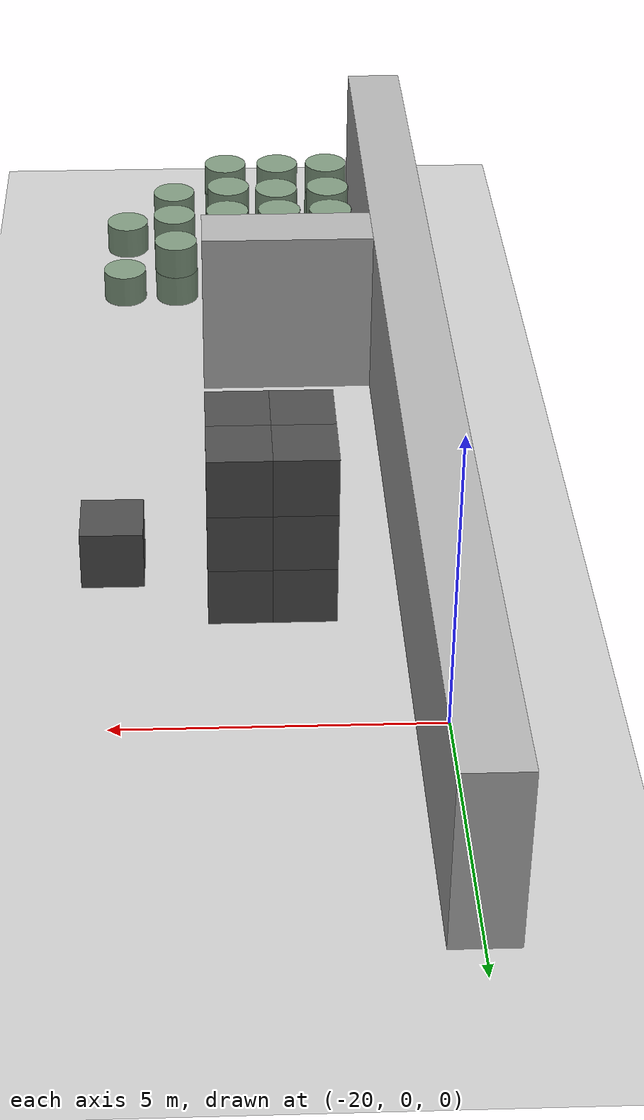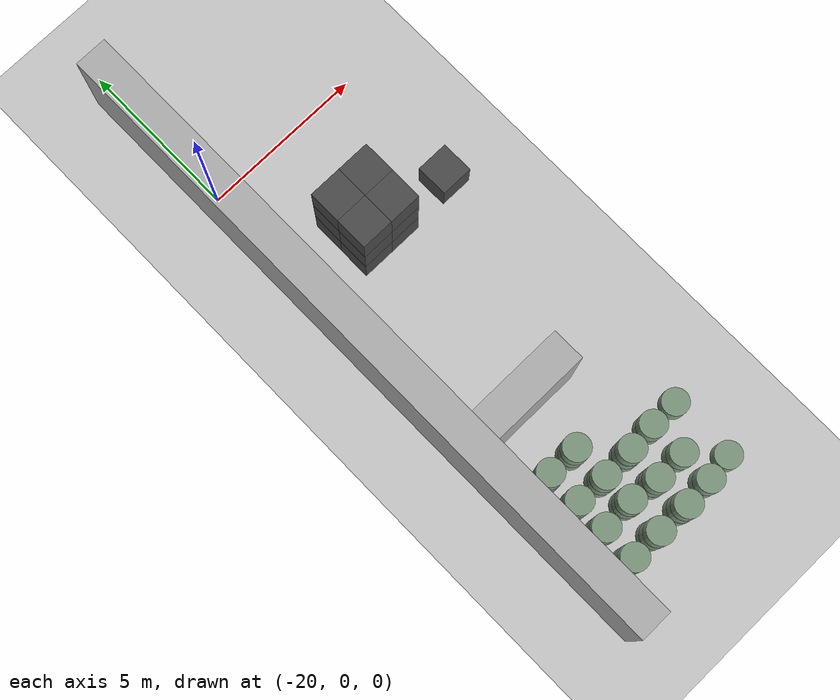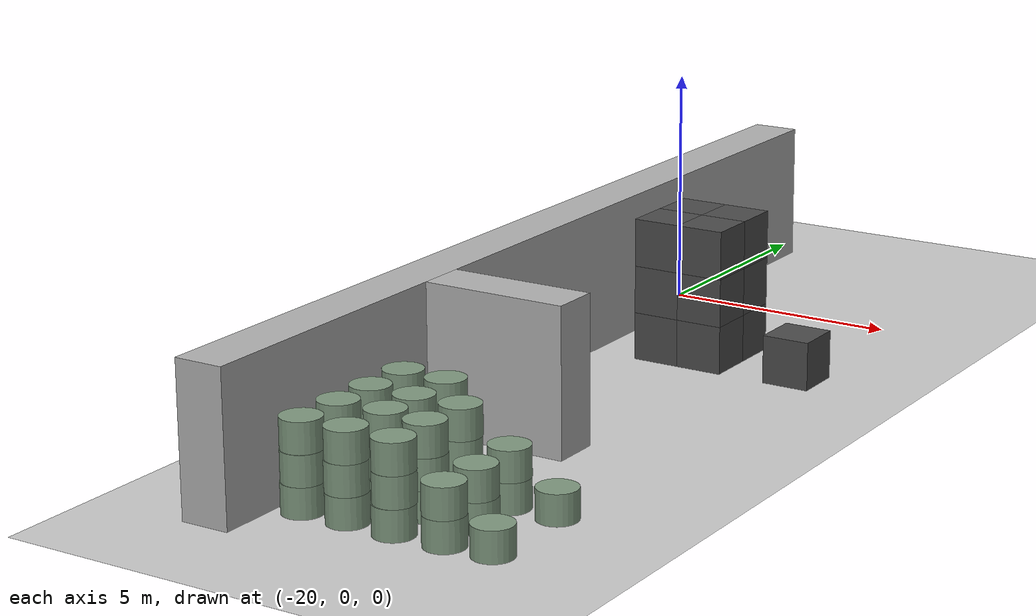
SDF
<sdf version="1.6">
 <world name="default">
  <include><uri>model://ground_plane</uri></include>
  <model name="wall_0">
   <pose>-20.0 -6.0 1.5 0 -0 0</pose>
   <static>True</static>
   <link name="link">
    <inertial>
     <mass>100</mass>
     <inertia>
      <ixx>0.166667</ixx>
      <ixy>0</ixy>
      <ixz>0</ixz>
      <iyy>0.166667</iyy>
      <iyz>0</iyz>
      <izz>0.166667</izz>
     </inertia>
    </inertial>
    <collision name="collision"><geometry><box><size>1.0 21.0 3.0</size></box></geometry></collision>
    <visual name="visual">
     <geometry><box><size>1.0 21.0 3.0</size></box></geometry>
     <material><ambient>0.7 0.7 0.7 1</ambient><diffuse>0.7 0.7 0.7 1</diffuse></material>
    </visual>
   </link>
  </model>
  <model name="wall_7">
   <pose>-18.0 -10.0 1.5 0 -0 0</pose>
   <static>True</static>
   <link name="link">
    <inertial>
     <mass>100</mass>
     <inertia>
      <ixx>0.166667</ixx>
      <ixy>0</ixy>
      <ixz>0</ixz>
      <iyy>0.166667</iyy>
      <iyz>0</iyz>
      <izz>0.166667</izz>
     </inertia>
    </inertial>
    <collision name="collision"><geometry><box><size>3.0 1.0 3.0</size></box></geometry></collision>
    <visual name="visual">
     <geometry><box><size>3.0 1.0 3.0</size></box></geometry>
     <material><ambient>0.7 0.7 0.7 1</ambient><diffuse>0.7 0.7 0.7 1</diffuse></material>
    </visual>
   </link>
  </model>
  <model name="unit_box_0">
   <pose>-18.0 -4.0 0.5 0 -0 0</pose>
   <static>True</static>
   <link name="link">
    <inertial>
     <mass>100</mass>
     <inertia>
      <ixx>0.166667</ixx>
      <ixy>0</ixy>
      <ixz>0</ixz>
      <iyy>0.166667</iyy>
      <iyz>0</iyz>
      <izz>0.166667</izz>
     </inertia>
    </inertial>
    <collision name="collision"><geometry><box><size>1.0 1.0 1.0</size></box></geometry></collision>
    <visual name="visual">
     <geometry><box><size>1.0 1.0 1.0</size></box></geometry>
     <material><ambient>0.3 0.3 0.3 1</ambient><diffuse>0.3 0.3 0.3 1</diffuse></material>
    </visual>
   </link>
  </model>
  <model name="unit_box_1">
   <pose>-18.0 -4.0 1.5 0 -0 0</pose>
   <static>True</static>
   <link name="link">
    <inertial>
     <mass>100</mass>
     <inertia>
      <ixx>0.166667</ixx>
      <ixy>0</ixy>
      <ixz>0</ixz>
      <iyy>0.166667</iyy>
      <iyz>0</iyz>
      <izz>0.166667</izz>
     </inertia>
    </inertial>
    <collision name="collision"><geometry><box><size>1.0 1.0 1.0</size></box></geometry></collision>
    <visual name="visual">
     <geometry><box><size>1.0 1.0 1.0</size></box></geometry>
     <material><ambient>0.3 0.3 0.3 1</ambient><diffuse>0.3 0.3 0.3 1</diffuse></material>
    </visual>
   </link>
  </model>
  <model name="unit_box_2">
   <pose>-18.0 -4.0 2.5 0 -0 0</pose>
   <static>True</static>
   <link name="link">
    <inertial>
     <mass>100</mass>
     <inertia>
      <ixx>0.166667</ixx>
      <ixy>0</ixy>
      <ixz>0</ixz>
      <iyy>0.166667</iyy>
      <iyz>0</iyz>
      <izz>0.166667</izz>
     </inertia>
    </inertial>
    <collision name="collision"><geometry><box><size>1.0 1.0 1.0</size></box></geometry></collision>
    <visual name="visual">
     <geometry><box><size>1.0 1.0 1.0</size></box></geometry>
     <material><ambient>0.3 0.3 0.3 1</ambient><diffuse>0.3 0.3 0.3 1</diffuse></material>
    </visual>
   </link>
  </model>
  <model name="unit_box_3">
   <pose>-18.0 -3.0 0.5 0 -0 0</pose>
   <static>True</static>
   <link name="link">
    <inertial>
     <mass>100</mass>
     <inertia>
      <ixx>0.166667</ixx>
      <ixy>0</ixy>
      <ixz>0</ixz>
      <iyy>0.166667</iyy>
      <iyz>0</iyz>
      <izz>0.166667</izz>
     </inertia>
    </inertial>
    <collision name="collision"><geometry><box><size>1.0 1.0 1.0</size></box></geometry></collision>
    <visual name="visual">
     <geometry><box><size>1.0 1.0 1.0</size></box></geometry>
     <material><ambient>0.3 0.3 0.3 1</ambient><diffuse>0.3 0.3 0.3 1</diffuse></material>
    </visual>
   </link>
  </model>
  <model name="unit_box_4">
   <pose>-18.0 -3.0 1.5 0 -0 0</pose>
   <static>True</static>
   <link name="link">
    <inertial>
     <mass>100</mass>
     <inertia>
      <ixx>0.166667</ixx>
      <ixy>0</ixy>
      <ixz>0</ixz>
      <iyy>0.166667</iyy>
      <iyz>0</iyz>
      <izz>0.166667</izz>
     </inertia>
    </inertial>
    <collision name="collision"><geometry><box><size>1.0 1.0 1.0</size></box></geometry></collision>
    <visual name="visual">
     <geometry><box><size>1.0 1.0 1.0</size></box></geometry>
     <material><ambient>0.3 0.3 0.3 1</ambient><diffuse>0.3 0.3 0.3 1</diffuse></material>
    </visual>
   </link>
  </model>
  <model name="unit_box_5">
   <pose>-18.0 -3.0 2.5 0 -0 0</pose>
   <static>True</static>
   <link name="link">
    <inertial>
     <mass>100</mass>
     <inertia>
      <ixx>0.166667</ixx>
      <ixy>0</ixy>
      <ixz>0</ixz>
      <iyy>0.166667</iyy>
      <iyz>0</iyz>
      <izz>0.166667</izz>
     </inertia>
    </inertial>
    <collision name="collision"><geometry><box><size>1.0 1.0 1.0</size></box></geometry></collision>
    <visual name="visual">
     <geometry><box><size>1.0 1.0 1.0</size></box></geometry>
     <material><ambient>0.3 0.3 0.3 1</ambient><diffuse>0.3 0.3 0.3 1</diffuse></material>
    </visual>
   </link>
  </model>
  <model name="unit_box_15">
   <pose>-17.0 -4.0 0.5 0 -0 0</pose>
   <static>True</static>
   <link name="link">
    <inertial>
     <mass>100</mass>
     <inertia>
      <ixx>0.166667</ixx>
      <ixy>0</ixy>
      <ixz>0</ixz>
      <iyy>0.166667</iyy>
      <iyz>0</iyz>
      <izz>0.166667</izz>
     </inertia>
    </inertial>
    <collision name="collision"><geometry><box><size>1.0 1.0 1.0</size></box></geometry></collision>
    <visual name="visual">
     <geometry><box><size>1.0 1.0 1.0</size></box></geometry>
     <material><ambient>0.3 0.3 0.3 1</ambient><diffuse>0.3 0.3 0.3 1</diffuse></material>
    </visual>
   </link>
  </model>
  <model name="unit_box_16">
   <pose>-17.0 -4.0 1.5 0 -0 0</pose>
   <static>True</static>
   <link name="link">
    <inertial>
     <mass>100</mass>
     <inertia>
      <ixx>0.166667</ixx>
      <ixy>0</ixy>
      <ixz>0</ixz>
      <iyy>0.166667</iyy>
      <iyz>0</iyz>
      <izz>0.166667</izz>
     </inertia>
    </inertial>
    <collision name="collision"><geometry><box><size>1.0 1.0 1.0</size></box></geometry></collision>
    <visual name="visual">
     <geometry><box><size>1.0 1.0 1.0</size></box></geometry>
     <material><ambient>0.3 0.3 0.3 1</ambient><diffuse>0.3 0.3 0.3 1</diffuse></material>
    </visual>
   </link>
  </model>
  <model name="unit_box_17">
   <pose>-17.0 -4.0 2.5 0 -0 0</pose>
   <static>True</static>
   <link name="link">
    <inertial>
     <mass>100</mass>
     <inertia>
      <ixx>0.166667</ixx>
      <ixy>0</ixy>
      <ixz>0</ixz>
      <iyy>0.166667</iyy>
      <iyz>0</iyz>
      <izz>0.166667</izz>
     </inertia>
    </inertial>
    <collision name="collision"><geometry><box><size>1.0 1.0 1.0</size></box></geometry></collision>
    <visual name="visual">
     <geometry><box><size>1.0 1.0 1.0</size></box></geometry>
     <material><ambient>0.3 0.3 0.3 1</ambient><diffuse>0.3 0.3 0.3 1</diffuse></material>
    </visual>
   </link>
  </model>
  <model name="unit_box_18">
   <pose>-17.0 -3.0 0.5 0 -0 0</pose>
   <static>True</static>
   <link name="link">
    <inertial>
     <mass>100</mass>
     <inertia>
      <ixx>0.166667</ixx>
      <ixy>0</ixy>
      <ixz>0</ixz>
      <iyy>0.166667</iyy>
      <iyz>0</iyz>
      <izz>0.166667</izz>
     </inertia>
    </inertial>
    <collision name="collision"><geometry><box><size>1.0 1.0 1.0</size></box></geometry></collision>
    <visual name="visual">
     <geometry><box><size>1.0 1.0 1.0</size></box></geometry>
     <material><ambient>0.3 0.3 0.3 1</ambient><diffuse>0.3 0.3 0.3 1</diffuse></material>
    </visual>
   </link>
  </model>
  <model name="unit_box_19">
   <pose>-17.0 -3.0 1.5 0 -0 0</pose>
   <static>True</static>
   <link name="link">
    <inertial>
     <mass>100</mass>
     <inertia>
      <ixx>0.166667</ixx>
      <ixy>0</ixy>
      <ixz>0</ixz>
      <iyy>0.166667</iyy>
      <iyz>0</iyz>
      <izz>0.166667</izz>
     </inertia>
    </inertial>
    <collision name="collision"><geometry><box><size>1.0 1.0 1.0</size></box></geometry></collision>
    <visual name="visual">
     <geometry><box><size>1.0 1.0 1.0</size></box></geometry>
     <material><ambient>0.3 0.3 0.3 1</ambient><diffuse>0.3 0.3 0.3 1</diffuse></material>
    </visual>
   </link>
  </model>
  <model name="unit_box_20">
   <pose>-17.0 -3.0 2.5 0 -0 0</pose>
   <static>True</static>
   <link name="link">
    <inertial>
     <mass>100</mass>
     <inertia>
      <ixx>0.166667</ixx>
      <ixy>0</ixy>
      <ixz>0</ixz>
      <iyy>0.166667</iyy>
      <iyz>0</iyz>
      <izz>0.166667</izz>
     </inertia>
    </inertial>
    <collision name="collision"><geometry><box><size>1.0 1.0 1.0</size></box></geometry></collision>
    <visual name="visual">
     <geometry><box><size>1.0 1.0 1.0</size></box></geometry>
     <material><ambient>0.3 0.3 0.3 1</ambient><diffuse>0.3 0.3 0.3 1</diffuse></material>
    </visual>
   </link>
  </model>
  <model name="unit_box_30">
   <pose>-15.0 -4.0 0.5 0 -0 0</pose>
   <static>True</static>
   <link name="link">
    <inertial>
     <mass>100</mass>
     <inertia>
      <ixx>0.166667</ixx>
      <ixy>0</ixy>
      <ixz>0</ixz>
      <iyy>0.166667</iyy>
      <iyz>0</iyz>
      <izz>0.166667</izz>
     </inertia>
    </inertial>
    <collision name="collision"><geometry><box><size>1.0 1.0 1.0</size></box></geometry></collision>
    <visual name="visual">
     <geometry><box><size>1.0 1.0 1.0</size></box></geometry>
     <material><ambient>0.3 0.3 0.3 1</ambient><diffuse>0.3 0.3 0.3 1</diffuse></material>
    </visual>
   </link>
  </model>
  <model name="unit_cylinder_0">
   <pose>-18.9848155146 -15.0436483596 0.3 0 -0 0</pose>
   <static>True</static>
   <link name="link">
    <inertial>
     <mass>100</mass>
     <inertia><ixx>0.145833</ixx><ixy>0</ixy><ixz>0</ixz><iyy>0.145833</iyy><iyz>0</iyz><izz>0.125</izz></inertia>
    </inertial>
    <collision name="collision">
     <geometry><cylinder><radius>0.4</radius><length>0.6</length></cylinder></geometry>
     <max_contacts>100</max_contacts>
    </collision>
    <visual name="visual">
     <geometry><cylinder><radius>0.4</radius><length>0.6</length></cylinder></geometry>
     <material><ambient>0.5 0.6 0.5 1</ambient><diffuse>0.5 0.6 0.5 1</diffuse></material>
    </visual>
   </link>
  </model>
  <model name="unit_cylinder_1">
   <pose>-18.9753081316 -15.0390703166 0.9 0 -0 0</pose>
   <static>True</static>
   <link name="link">
    <inertial>
     <mass>100</mass>
     <inertia><ixx>0.145833</ixx><ixy>0</ixy><ixz>0</ixz><iyy>0.145833</iyy><iyz>0</iyz><izz>0.125</izz></inertia>
    </inertial>
    <collision name="collision">
     <geometry><cylinder><radius>0.4</radius><length>0.6</length></cylinder></geometry>
     <max_contacts>100</max_contacts>
    </collision>
    <visual name="visual">
     <geometry><cylinder><radius>0.4</radius><length>0.6</length></cylinder></geometry>
     <material><ambient>0.5 0.6 0.5 1</ambient><diffuse>0.5 0.6 0.5 1</diffuse></material>
    </visual>
   </link>
  </model>
  <model name="unit_cylinder_2">
   <pose>-18.9786395941 -15.0282028375 1.5 0 -0 0</pose>
   <static>True</static>
   <link name="link">
    <inertial>
     <mass>100</mass>
     <inertia><ixx>0.145833</ixx><ixy>0</ixy><ixz>0</ixz><iyy>0.145833</iyy><iyz>0</iyz><izz>0.125</izz></inertia>
    </inertial>
    <collision name="collision">
     <geometry><cylinder><radius>0.4</radius><length>0.6</length></cylinder></geometry>
     <max_contacts>100</max_contacts>
    </collision>
    <visual name="visual">
     <geometry><cylinder><radius>0.4</radius><length>0.6</length></cylinder></geometry>
     <material><ambient>0.5 0.6 0.5 1</ambient><diffuse>0.5 0.6 0.5 1</diffuse></material>
    </visual>
   </link>
  </model>
  <model name="unit_cylinder_3">
   <pose>-18.9631828301 -13.9885523534 0.3 0 -0 0</pose>
   <static>True</static>
   <link name="link">
    <inertial>
     <mass>100</mass>
     <inertia><ixx>0.145833</ixx><ixy>0</ixy><ixz>0</ixz><iyy>0.145833</iyy><iyz>0</iyz><izz>0.125</izz></inertia>
    </inertial>
    <collision name="collision">
     <geometry><cylinder><radius>0.4</radius><length>0.6</length></cylinder></geometry>
     <max_contacts>100</max_contacts>
    </collision>
    <visual name="visual">
     <geometry><cylinder><radius>0.4</radius><length>0.6</length></cylinder></geometry>
     <material><ambient>0.5 0.6 0.5 1</ambient><diffuse>0.5 0.6 0.5 1</diffuse></material>
    </visual>
   </link>
  </model>
  <model name="unit_cylinder_4">
   <pose>-18.954876761 -13.9944220135 0.9 0 -0 0</pose>
   <static>True</static>
   <link name="link">
    <inertial>
     <mass>100</mass>
     <inertia><ixx>0.145833</ixx><ixy>0</ixy><ixz>0</ixz><iyy>0.145833</iyy><iyz>0</iyz><izz>0.125</izz></inertia>
    </inertial>
    <collision name="collision">
     <geometry><cylinder><radius>0.4</radius><length>0.6</length></cylinder></geometry>
     <max_contacts>100</max_contacts>
    </collision>
    <visual name="visual">
     <geometry><cylinder><radius>0.4</radius><length>0.6</length></cylinder></geometry>
     <material><ambient>0.5 0.6 0.5 1</ambient><diffuse>0.5 0.6 0.5 1</diffuse></material>
    </visual>
   </link>
  </model>
  <model name="unit_cylinder_5">
   <pose>-18.9597336843 -13.984637899 1.5 0 -0 0</pose>
   <static>True</static>
   <link name="link">
    <inertial>
     <mass>100</mass>
     <inertia><ixx>0.145833</ixx><ixy>0</ixy><ixz>0</ixz><iyy>0.145833</iyy><iyz>0</iyz><izz>0.125</izz></inertia>
    </inertial>
    <collision name="collision">
     <geometry><cylinder><radius>0.4</radius><length>0.6</length></cylinder></geometry>
     <max_contacts>100</max_contacts>
    </collision>
    <visual name="visual">
     <geometry><cylinder><radius>0.4</radius><length>0.6</length></cylinder></geometry>
     <material><ambient>0.5 0.6 0.5 1</ambient><diffuse>0.5 0.6 0.5 1</diffuse></material>
    </visual>
   </link>
  </model>
  <model name="unit_cylinder_6">
   <pose>-18.9671743121 -13.0188008547 0.3 0 -0 0</pose>
   <static>True</static>
   <link name="link">
    <inertial>
     <mass>100</mass>
     <inertia><ixx>0.145833</ixx><ixy>0</ixy><ixz>0</ixz><iyy>0.145833</iyy><iyz>0</iyz><izz>0.125</izz></inertia>
    </inertial>
    <collision name="collision">
     <geometry><cylinder><radius>0.4</radius><length>0.6</length></cylinder></geometry>
     <max_contacts>100</max_contacts>
    </collision>
    <visual name="visual">
     <geometry><cylinder><radius>0.4</radius><length>0.6</length></cylinder></geometry>
     <material><ambient>0.5 0.6 0.5 1</ambient><diffuse>0.5 0.6 0.5 1</diffuse></material>
    </visual>
   </link>
  </model>
  <model name="unit_cylinder_7">
   <pose>-18.9640005225 -13.0205766781 0.9 0 -0 0</pose>
   <static>True</static>
   <link name="link">
    <inertial>
     <mass>100</mass>
     <inertia><ixx>0.145833</ixx><ixy>0</ixy><ixz>0</ixz><iyy>0.145833</iyy><iyz>0</iyz><izz>0.125</izz></inertia>
    </inertial>
    <collision name="collision">
     <geometry><cylinder><radius>0.4</radius><length>0.6</length></cylinder></geometry>
     <max_contacts>100</max_contacts>
    </collision>
    <visual name="visual">
     <geometry><cylinder><radius>0.4</radius><length>0.6</length></cylinder></geometry>
     <material><ambient>0.5 0.6 0.5 1</ambient><diffuse>0.5 0.6 0.5 1</diffuse></material>
    </visual>
   </link>
  </model>
  <model name="unit_cylinder_8">
   <pose>-18.9644642062 -13.0171182267 1.5 0 -0 0</pose>
   <static>True</static>
   <link name="link">
    <inertial>
     <mass>100</mass>
     <inertia><ixx>0.145833</ixx><ixy>0</ixy><ixz>0</ixz><iyy>0.145833</iyy><iyz>0</iyz><izz>0.125</izz></inertia>
    </inertial>
    <collision name="collision">
     <geometry><cylinder><radius>0.4</radius><length>0.6</length></cylinder></geometry>
     <max_contacts>100</max_contacts>
    </collision>
    <visual name="visual">
     <geometry><cylinder><radius>0.4</radius><length>0.6</length></cylinder></geometry>
     <material><ambient>0.5 0.6 0.5 1</ambient><diffuse>0.5 0.6 0.5 1</diffuse></material>
    </visual>
   </link>
  </model>
  <model name="unit_cylinder_9">
   <pose>-18.9877027369 -11.987669307 0.3 0 -0 0</pose>
   <static>True</static>
   <link name="link">
    <inertial>
     <mass>100</mass>
     <inertia><ixx>0.145833</ixx><ixy>0</ixy><ixz>0</ixz><iyy>0.145833</iyy><iyz>0</iyz><izz>0.125</izz></inertia>
    </inertial>
    <collision name="collision">
     <geometry><cylinder><radius>0.4</radius><length>0.6</length></cylinder></geometry>
     <max_contacts>100</max_contacts>
    </collision>
    <visual name="visual">
     <geometry><cylinder><radius>0.4</radius><length>0.6</length></cylinder></geometry>
     <material><ambient>0.5 0.6 0.5 1</ambient><diffuse>0.5 0.6 0.5 1</diffuse></material>
    </visual>
   </link>
  </model>
  <model name="unit_cylinder_10">
   <pose>-18.9919541292 -11.9872807813 0.9 0 -0 0</pose>
   <static>True</static>
   <link name="link">
    <inertial>
     <mass>100</mass>
     <inertia><ixx>0.145833</ixx><ixy>0</ixy><ixz>0</ixz><iyy>0.145833</iyy><iyz>0</iyz><izz>0.125</izz></inertia>
    </inertial>
    <collision name="collision">
     <geometry><cylinder><radius>0.4</radius><length>0.6</length></cylinder></geometry>
     <max_contacts>100</max_contacts>
    </collision>
    <visual name="visual">
     <geometry><cylinder><radius>0.4</radius><length>0.6</length></cylinder></geometry>
     <material><ambient>0.5 0.6 0.5 1</ambient><diffuse>0.5 0.6 0.5 1</diffuse></material>
    </visual>
   </link>
  </model>
  <model name="unit_cylinder_11">
   <pose>-18.9874994229 -11.9821735183 1.5 0 -0 0</pose>
   <static>True</static>
   <link name="link">
    <inertial>
     <mass>100</mass>
     <inertia><ixx>0.145833</ixx><ixy>0</ixy><ixz>0</ixz><iyy>0.145833</iyy><iyz>0</iyz><izz>0.125</izz></inertia>
    </inertial>
    <collision name="collision">
     <geometry><cylinder><radius>0.4</radius><length>0.6</length></cylinder></geometry>
     <max_contacts>100</max_contacts>
    </collision>
    <visual name="visual">
     <geometry><cylinder><radius>0.4</radius><length>0.6</length></cylinder></geometry>
     <material><ambient>0.5 0.6 0.5 1</ambient><diffuse>0.5 0.6 0.5 1</diffuse></material>
    </visual>
   </link>
  </model>
  <model name="unit_cylinder_12">
   <pose>-18.0204128324 -15.0269023507 0.3 0 -0 0</pose>
   <static>True</static>
   <link name="link">
    <inertial>
     <mass>100</mass>
     <inertia><ixx>0.145833</ixx><ixy>0</ixy><ixz>0</ixz><iyy>0.145833</iyy><iyz>0</iyz><izz>0.125</izz></inertia>
    </inertial>
    <collision name="collision">
     <geometry><cylinder><radius>0.4</radius><length>0.6</length></cylinder></geometry>
     <max_contacts>100</max_contacts>
    </collision>
    <visual name="visual">
     <geometry><cylinder><radius>0.4</radius><length>0.6</length></cylinder></geometry>
     <material><ambient>0.5 0.6 0.5 1</ambient><diffuse>0.5 0.6 0.5 1</diffuse></material>
    </visual>
   </link>
  </model>
  <model name="unit_cylinder_13">
   <pose>-18.0298365788 -15.026688041 0.9 0 -0 0</pose>
   <static>True</static>
   <link name="link">
    <inertial>
     <mass>100</mass>
     <inertia><ixx>0.145833</ixx><ixy>0</ixy><ixz>0</ixz><iyy>0.145833</iyy><iyz>0</iyz><izz>0.125</izz></inertia>
    </inertial>
    <collision name="collision">
     <geometry><cylinder><radius>0.4</radius><length>0.6</length></cylinder></geometry>
     <max_contacts>100</max_contacts>
    </collision>
    <visual name="visual">
     <geometry><cylinder><radius>0.4</radius><length>0.6</length></cylinder></geometry>
     <material><ambient>0.5 0.6 0.5 1</ambient><diffuse>0.5 0.6 0.5 1</diffuse></material>
    </visual>
   </link>
  </model>
  <model name="unit_cylinder_14">
   <pose>-18.0144476516 -15.0240585985 1.5 0 -0 0</pose>
   <static>True</static>
   <link name="link">
    <inertial>
     <mass>100</mass>
     <inertia><ixx>0.145833</ixx><ixy>0</ixy><ixz>0</ixz><iyy>0.145833</iyy><iyz>0</iyz><izz>0.125</izz></inertia>
    </inertial>
    <collision name="collision">
     <geometry><cylinder><radius>0.4</radius><length>0.6</length></cylinder></geometry>
     <max_contacts>100</max_contacts>
    </collision>
    <visual name="visual">
     <geometry><cylinder><radius>0.4</radius><length>0.6</length></cylinder></geometry>
     <material><ambient>0.5 0.6 0.5 1</ambient><diffuse>0.5 0.6 0.5 1</diffuse></material>
    </visual>
   </link>
  </model>
  <model name="unit_cylinder_15">
   <pose>-17.9576998785 -13.9495635678 0.3 0 -0 0</pose>
   <static>True</static>
   <link name="link">
    <inertial>
     <mass>100</mass>
     <inertia><ixx>0.145833</ixx><ixy>0</ixy><ixz>0</ixz><iyy>0.145833</iyy><iyz>0</iyz><izz>0.125</izz></inertia>
    </inertial>
    <collision name="collision">
     <geometry><cylinder><radius>0.4</radius><length>0.6</length></cylinder></geometry>
     <max_contacts>100</max_contacts>
    </collision>
    <visual name="visual">
     <geometry><cylinder><radius>0.4</radius><length>0.6</length></cylinder></geometry>
     <material><ambient>0.5 0.6 0.5 1</ambient><diffuse>0.5 0.6 0.5 1</diffuse></material>
    </visual>
   </link>
  </model>
  <model name="unit_cylinder_16">
   <pose>-17.9600712989 -13.9569904692 0.9 0 -0 0</pose>
   <static>True</static>
   <link name="link">
    <inertial>
     <mass>100</mass>
     <inertia><ixx>0.145833</ixx><ixy>0</ixy><ixz>0</ixz><iyy>0.145833</iyy><iyz>0</iyz><izz>0.125</izz></inertia>
    </inertial>
    <collision name="collision">
     <geometry><cylinder><radius>0.4</radius><length>0.6</length></cylinder></geometry>
     <max_contacts>100</max_contacts>
    </collision>
    <visual name="visual">
     <geometry><cylinder><radius>0.4</radius><length>0.6</length></cylinder></geometry>
     <material><ambient>0.5 0.6 0.5 1</ambient><diffuse>0.5 0.6 0.5 1</diffuse></material>
    </visual>
   </link>
  </model>
  <model name="unit_cylinder_17">
   <pose>-17.9620759223 -13.9413163294 1.5 0 -0 0</pose>
   <static>True</static>
   <link name="link">
    <inertial>
     <mass>100</mass>
     <inertia><ixx>0.145833</ixx><ixy>0</ixy><ixz>0</ixz><iyy>0.145833</iyy><iyz>0</iyz><izz>0.125</izz></inertia>
    </inertial>
    <collision name="collision">
     <geometry><cylinder><radius>0.4</radius><length>0.6</length></cylinder></geometry>
     <max_contacts>100</max_contacts>
    </collision>
    <visual name="visual">
     <geometry><cylinder><radius>0.4</radius><length>0.6</length></cylinder></geometry>
     <material><ambient>0.5 0.6 0.5 1</ambient><diffuse>0.5 0.6 0.5 1</diffuse></material>
    </visual>
   </link>
  </model>
  <model name="unit_cylinder_18">
   <pose>-17.9924236941 -13.0440022226 0.3 0 -0 0</pose>
   <static>True</static>
   <link name="link">
    <inertial>
     <mass>100</mass>
     <inertia><ixx>0.145833</ixx><ixy>0</ixy><ixz>0</ixz><iyy>0.145833</iyy><iyz>0</iyz><izz>0.125</izz></inertia>
    </inertial>
    <collision name="collision">
     <geometry><cylinder><radius>0.4</radius><length>0.6</length></cylinder></geometry>
     <max_contacts>100</max_contacts>
    </collision>
    <visual name="visual">
     <geometry><cylinder><radius>0.4</radius><length>0.6</length></cylinder></geometry>
     <material><ambient>0.5 0.6 0.5 1</ambient><diffuse>0.5 0.6 0.5 1</diffuse></material>
    </visual>
   </link>
  </model>
  <model name="unit_cylinder_19">
   <pose>-17.9819134674 -13.0532966091 0.9 0 -0 0</pose>
   <static>True</static>
   <link name="link">
    <inertial>
     <mass>100</mass>
     <inertia><ixx>0.145833</ixx><ixy>0</ixy><ixz>0</ixz><iyy>0.145833</iyy><iyz>0</iyz><izz>0.125</izz></inertia>
    </inertial>
    <collision name="collision">
     <geometry><cylinder><radius>0.4</radius><length>0.6</length></cylinder></geometry>
     <max_contacts>100</max_contacts>
    </collision>
    <visual name="visual">
     <geometry><cylinder><radius>0.4</radius><length>0.6</length></cylinder></geometry>
     <material><ambient>0.5 0.6 0.5 1</ambient><diffuse>0.5 0.6 0.5 1</diffuse></material>
    </visual>
   </link>
  </model>
  <model name="unit_cylinder_20">
   <pose>-17.9927643782 -13.0396149408 1.5 0 -0 0</pose>
   <static>True</static>
   <link name="link">
    <inertial>
     <mass>100</mass>
     <inertia><ixx>0.145833</ixx><ixy>0</ixy><ixz>0</ixz><iyy>0.145833</iyy><iyz>0</iyz><izz>0.125</izz></inertia>
    </inertial>
    <collision name="collision">
     <geometry><cylinder><radius>0.4</radius><length>0.6</length></cylinder></geometry>
     <max_contacts>100</max_contacts>
    </collision>
    <visual name="visual">
     <geometry><cylinder><radius>0.4</radius><length>0.6</length></cylinder></geometry>
     <material><ambient>0.5 0.6 0.5 1</ambient><diffuse>0.5 0.6 0.5 1</diffuse></material>
    </visual>
   </link>
  </model>
  <model name="unit_cylinder_21">
   <pose>-18.0317449401 -11.986351398 0.3 0 -0 0</pose>
   <static>True</static>
   <link name="link">
    <inertial>
     <mass>100</mass>
     <inertia><ixx>0.145833</ixx><ixy>0</ixy><ixz>0</ixz><iyy>0.145833</iyy><iyz>0</iyz><izz>0.125</izz></inertia>
    </inertial>
    <collision name="collision">
     <geometry><cylinder><radius>0.4</radius><length>0.6</length></cylinder></geometry>
     <max_contacts>100</max_contacts>
    </collision>
    <visual name="visual">
     <geometry><cylinder><radius>0.4</radius><length>0.6</length></cylinder></geometry>
     <material><ambient>0.5 0.6 0.5 1</ambient><diffuse>0.5 0.6 0.5 1</diffuse></material>
    </visual>
   </link>
  </model>
  <model name="unit_cylinder_22">
   <pose>-18.0202980924 -11.989979792 0.9 0 -0 0</pose>
   <static>True</static>
   <link name="link">
    <inertial>
     <mass>100</mass>
     <inertia><ixx>0.145833</ixx><ixy>0</ixy><ixz>0</ixz><iyy>0.145833</iyy><iyz>0</iyz><izz>0.125</izz></inertia>
    </inertial>
    <collision name="collision">
     <geometry><cylinder><radius>0.4</radius><length>0.6</length></cylinder></geometry>
     <max_contacts>100</max_contacts>
    </collision>
    <visual name="visual">
     <geometry><cylinder><radius>0.4</radius><length>0.6</length></cylinder></geometry>
     <material><ambient>0.5 0.6 0.5 1</ambient><diffuse>0.5 0.6 0.5 1</diffuse></material>
    </visual>
   </link>
  </model>
  <model name="unit_cylinder_23">
   <pose>-18.029693472 -11.9972655251 1.5 0 -0 0</pose>
   <static>True</static>
   <link name="link">
    <inertial>
     <mass>100</mass>
     <inertia><ixx>0.145833</ixx><ixy>0</ixy><ixz>0</ixz><iyy>0.145833</iyy><iyz>0</iyz><izz>0.125</izz></inertia>
    </inertial>
    <collision name="collision">
     <geometry><cylinder><radius>0.4</radius><length>0.6</length></cylinder></geometry>
     <max_contacts>100</max_contacts>
    </collision>
    <visual name="visual">
     <geometry><cylinder><radius>0.4</radius><length>0.6</length></cylinder></geometry>
     <material><ambient>0.5 0.6 0.5 1</ambient><diffuse>0.5 0.6 0.5 1</diffuse></material>
    </visual>
   </link>
  </model>
  <model name="unit_cylinder_24">
   <pose>-17.0066823207 -15.056057694 0.3 0 -0 0</pose>
   <static>True</static>
   <link name="link">
    <inertial>
     <mass>100</mass>
     <inertia><ixx>0.145833</ixx><ixy>0</ixy><ixz>0</ixz><iyy>0.145833</iyy><iyz>0</iyz><izz>0.125</izz></inertia>
    </inertial>
    <collision name="collision">
     <geometry><cylinder><radius>0.4</radius><length>0.6</length></cylinder></geometry>
     <max_contacts>100</max_contacts>
    </collision>
    <visual name="visual">
     <geometry><cylinder><radius>0.4</radius><length>0.6</length></cylinder></geometry>
     <material><ambient>0.5 0.6 0.5 1</ambient><diffuse>0.5 0.6 0.5 1</diffuse></material>
    </visual>
   </link>
  </model>
  <model name="unit_cylinder_25">
   <pose>-16.9952405052 -15.0450160968 0.9 0 -0 0</pose>
   <static>True</static>
   <link name="link">
    <inertial>
     <mass>100</mass>
     <inertia><ixx>0.145833</ixx><ixy>0</ixy><ixz>0</ixz><iyy>0.145833</iyy><iyz>0</iyz><izz>0.125</izz></inertia>
    </inertial>
    <collision name="collision">
     <geometry><cylinder><radius>0.4</radius><length>0.6</length></cylinder></geometry>
     <max_contacts>100</max_contacts>
    </collision>
    <visual name="visual">
     <geometry><cylinder><radius>0.4</radius><length>0.6</length></cylinder></geometry>
     <material><ambient>0.5 0.6 0.5 1</ambient><diffuse>0.5 0.6 0.5 1</diffuse></material>
    </visual>
   </link>
  </model>
  <model name="unit_cylinder_26">
   <pose>-16.9949218765 -15.0424731974 1.5 0 -0 0</pose>
   <static>True</static>
   <link name="link">
    <inertial>
     <mass>100</mass>
     <inertia><ixx>0.145833</ixx><ixy>0</ixy><ixz>0</ixz><iyy>0.145833</iyy><iyz>0</iyz><izz>0.125</izz></inertia>
    </inertial>
    <collision name="collision">
     <geometry><cylinder><radius>0.4</radius><length>0.6</length></cylinder></geometry>
     <max_contacts>100</max_contacts>
    </collision>
    <visual name="visual">
     <geometry><cylinder><radius>0.4</radius><length>0.6</length></cylinder></geometry>
     <material><ambient>0.5 0.6 0.5 1</ambient><diffuse>0.5 0.6 0.5 1</diffuse></material>
    </visual>
   </link>
  </model>
  <model name="unit_cylinder_27">
   <pose>-17.0371873118 -14.0525036945 0.3 0 -0 0</pose>
   <static>True</static>
   <link name="link">
    <inertial>
     <mass>100</mass>
     <inertia><ixx>0.145833</ixx><ixy>0</ixy><ixz>0</ixz><iyy>0.145833</iyy><iyz>0</iyz><izz>0.125</izz></inertia>
    </inertial>
    <collision name="collision">
     <geometry><cylinder><radius>0.4</radius><length>0.6</length></cylinder></geometry>
     <max_contacts>100</max_contacts>
    </collision>
    <visual name="visual">
     <geometry><cylinder><radius>0.4</radius><length>0.6</length></cylinder></geometry>
     <material><ambient>0.5 0.6 0.5 1</ambient><diffuse>0.5 0.6 0.5 1</diffuse></material>
    </visual>
   </link>
  </model>
  <model name="unit_cylinder_28">
   <pose>-17.032144684 -14.0506049132 0.9 0 -0 0</pose>
   <static>True</static>
   <link name="link">
    <inertial>
     <mass>100</mass>
     <inertia><ixx>0.145833</ixx><ixy>0</ixy><ixz>0</ixz><iyy>0.145833</iyy><iyz>0</iyz><izz>0.125</izz></inertia>
    </inertial>
    <collision name="collision">
     <geometry><cylinder><radius>0.4</radius><length>0.6</length></cylinder></geometry>
     <max_contacts>100</max_contacts>
    </collision>
    <visual name="visual">
     <geometry><cylinder><radius>0.4</radius><length>0.6</length></cylinder></geometry>
     <material><ambient>0.5 0.6 0.5 1</ambient><diffuse>0.5 0.6 0.5 1</diffuse></material>
    </visual>
   </link>
  </model>
  <model name="unit_cylinder_29">
   <pose>-17.0393326802 -14.0471451607 1.5 0 -0 0</pose>
   <static>True</static>
   <link name="link">
    <inertial>
     <mass>100</mass>
     <inertia><ixx>0.145833</ixx><ixy>0</ixy><ixz>0</ixz><iyy>0.145833</iyy><iyz>0</iyz><izz>0.125</izz></inertia>
    </inertial>
    <collision name="collision">
     <geometry><cylinder><radius>0.4</radius><length>0.6</length></cylinder></geometry>
     <max_contacts>100</max_contacts>
    </collision>
    <visual name="visual">
     <geometry><cylinder><radius>0.4</radius><length>0.6</length></cylinder></geometry>
     <material><ambient>0.5 0.6 0.5 1</ambient><diffuse>0.5 0.6 0.5 1</diffuse></material>
    </visual>
   </link>
  </model>
  <model name="unit_cylinder_30">
   <pose>-17.0029380052 -13.0306715033 0.3 0 -0 0</pose>
   <static>True</static>
   <link name="link">
    <inertial>
     <mass>100</mass>
     <inertia><ixx>0.145833</ixx><ixy>0</ixy><ixz>0</ixz><iyy>0.145833</iyy><iyz>0</iyz><izz>0.125</izz></inertia>
    </inertial>
    <collision name="collision">
     <geometry><cylinder><radius>0.4</radius><length>0.6</length></cylinder></geometry>
     <max_contacts>100</max_contacts>
    </collision>
    <visual name="visual">
     <geometry><cylinder><radius>0.4</radius><length>0.6</length></cylinder></geometry>
     <material><ambient>0.5 0.6 0.5 1</ambient><diffuse>0.5 0.6 0.5 1</diffuse></material>
    </visual>
   </link>
  </model>
  <model name="unit_cylinder_31">
   <pose>-17.0162159168 -13.0232113672 0.9 0 -0 0</pose>
   <static>True</static>
   <link name="link">
    <inertial>
     <mass>100</mass>
     <inertia><ixx>0.145833</ixx><ixy>0</ixy><ixz>0</ixz><iyy>0.145833</iyy><iyz>0</iyz><izz>0.125</izz></inertia>
    </inertial>
    <collision name="collision">
     <geometry><cylinder><radius>0.4</radius><length>0.6</length></cylinder></geometry>
     <max_contacts>100</max_contacts>
    </collision>
    <visual name="visual">
     <geometry><cylinder><radius>0.4</radius><length>0.6</length></cylinder></geometry>
     <material><ambient>0.5 0.6 0.5 1</ambient><diffuse>0.5 0.6 0.5 1</diffuse></material>
    </visual>
   </link>
  </model>
  <model name="unit_cylinder_32">
   <pose>-17.001068551 -13.0222493787 1.5 0 -0 0</pose>
   <static>True</static>
   <link name="link">
    <inertial>
     <mass>100</mass>
     <inertia><ixx>0.145833</ixx><ixy>0</ixy><ixz>0</ixz><iyy>0.145833</iyy><iyz>0</iyz><izz>0.125</izz></inertia>
    </inertial>
    <collision name="collision">
     <geometry><cylinder><radius>0.4</radius><length>0.6</length></cylinder></geometry>
     <max_contacts>100</max_contacts>
    </collision>
    <visual name="visual">
     <geometry><cylinder><radius>0.4</radius><length>0.6</length></cylinder></geometry>
     <material><ambient>0.5 0.6 0.5 1</ambient><diffuse>0.5 0.6 0.5 1</diffuse></material>
    </visual>
   </link>
  </model>
  <model name="unit_cylinder_33">
   <pose>-15.9753678514 -15.0225111895 0.3 0 -0 0</pose>
   <static>True</static>
   <link name="link">
    <inertial>
     <mass>100</mass>
     <inertia><ixx>0.145833</ixx><ixy>0</ixy><ixz>0</ixz><iyy>0.145833</iyy><iyz>0</iyz><izz>0.125</izz></inertia>
    </inertial>
    <collision name="collision">
     <geometry><cylinder><radius>0.4</radius><length>0.6</length></cylinder></geometry>
     <max_contacts>100</max_contacts>
    </collision>
    <visual name="visual">
     <geometry><cylinder><radius>0.4</radius><length>0.6</length></cylinder></geometry>
     <material><ambient>0.5 0.6 0.5 1</ambient><diffuse>0.5 0.6 0.5 1</diffuse></material>
    </visual>
   </link>
  </model>
  <model name="unit_cylinder_34">
   <pose>-15.9729724065 -15.0273721478 0.9 0 -0 0</pose>
   <static>True</static>
   <link name="link">
    <inertial>
     <mass>100</mass>
     <inertia><ixx>0.145833</ixx><ixy>0</ixy><ixz>0</ixz><iyy>0.145833</iyy><iyz>0</iyz><izz>0.125</izz></inertia>
    </inertial>
    <collision name="collision">
     <geometry><cylinder><radius>0.4</radius><length>0.6</length></cylinder></geometry>
     <max_contacts>100</max_contacts>
    </collision>
    <visual name="visual">
     <geometry><cylinder><radius>0.4</radius><length>0.6</length></cylinder></geometry>
     <material><ambient>0.5 0.6 0.5 1</ambient><diffuse>0.5 0.6 0.5 1</diffuse></material>
    </visual>
   </link>
  </model>
  <model name="unit_cylinder_35">
   <pose>-15.9838445312 -14.0356315084 0.3 0 -0 0</pose>
   <static>True</static>
   <link name="link">
    <inertial>
     <mass>100</mass>
     <inertia><ixx>0.145833</ixx><ixy>0</ixy><ixz>0</ixz><iyy>0.145833</iyy><iyz>0</iyz><izz>0.125</izz></inertia>
    </inertial>
    <collision name="collision">
     <geometry><cylinder><radius>0.4</radius><length>0.6</length></cylinder></geometry>
     <max_contacts>100</max_contacts>
    </collision>
    <visual name="visual">
     <geometry><cylinder><radius>0.4</radius><length>0.6</length></cylinder></geometry>
     <material><ambient>0.5 0.6 0.5 1</ambient><diffuse>0.5 0.6 0.5 1</diffuse></material>
    </visual>
   </link>
  </model>
  <model name="unit_cylinder_36">
   <pose>-15.9813674382 -14.0503216331 0.9 0 -0 0</pose>
   <static>True</static>
   <link name="link">
    <inertial>
     <mass>100</mass>
     <inertia><ixx>0.145833</ixx><ixy>0</ixy><ixz>0</ixz><iyy>0.145833</iyy><iyz>0</iyz><izz>0.125</izz></inertia>
    </inertial>
    <collision name="collision">
     <geometry><cylinder><radius>0.4</radius><length>0.6</length></cylinder></geometry>
     <max_contacts>100</max_contacts>
    </collision>
    <visual name="visual">
     <geometry><cylinder><radius>0.4</radius><length>0.6</length></cylinder></geometry>
     <material><ambient>0.5 0.6 0.5 1</ambient><diffuse>0.5 0.6 0.5 1</diffuse></material>
    </visual>
   </link>
  </model>
  <model name="unit_cylinder_37">
   <pose>-16.0164100256 -12.9582960464 0.3 0 -0 0</pose>
   <static>True</static>
   <link name="link">
    <inertial>
     <mass>100</mass>
     <inertia><ixx>0.145833</ixx><ixy>0</ixy><ixz>0</ixz><iyy>0.145833</iyy><iyz>0</iyz><izz>0.125</izz></inertia>
    </inertial>
    <collision name="collision">
     <geometry><cylinder><radius>0.4</radius><length>0.6</length></cylinder></geometry>
     <max_contacts>100</max_contacts>
    </collision>
    <visual name="visual">
     <geometry><cylinder><radius>0.4</radius><length>0.6</length></cylinder></geometry>
     <material><ambient>0.5 0.6 0.5 1</ambient><diffuse>0.5 0.6 0.5 1</diffuse></material>
    </visual>
   </link>
  </model>
  <model name="unit_cylinder_38">
   <pose>-16.0112150292 -12.9624734192 0.9 0 -0 0</pose>
   <static>True</static>
   <link name="link">
    <inertial>
     <mass>100</mass>
     <inertia><ixx>0.145833</ixx><ixy>0</ixy><ixz>0</ixz><iyy>0.145833</iyy><iyz>0</iyz><izz>0.125</izz></inertia>
    </inertial>
    <collision name="collision">
     <geometry><cylinder><radius>0.4</radius><length>0.6</length></cylinder></geometry>
     <max_contacts>100</max_contacts>
    </collision>
    <visual name="visual">
     <geometry><cylinder><radius>0.4</radius><length>0.6</length></cylinder></geometry>
     <material><ambient>0.5 0.6 0.5 1</ambient><diffuse>0.5 0.6 0.5 1</diffuse></material>
    </visual>
   </link>
  </model>
  <model name="unit_cylinder_39">
   <pose>-15.0350770541 -14.952495513 0.3 0 -0 0</pose>
   <static>True</static>
   <link name="link">
    <inertial>
     <mass>100</mass>
     <inertia><ixx>0.145833</ixx><ixy>0</ixy><ixz>0</ixz><iyy>0.145833</iyy><iyz>0</iyz><izz>0.125</izz></inertia>
    </inertial>
    <collision name="collision">
     <geometry><cylinder><radius>0.4</radius><length>0.6</length></cylinder></geometry>
     <max_contacts>100</max_contacts>
    </collision>
    <visual name="visual">
     <geometry><cylinder><radius>0.4</radius><length>0.6</length></cylinder></geometry>
     <material><ambient>0.5 0.6 0.5 1</ambient><diffuse>0.5 0.6 0.5 1</diffuse></material>
    </visual>
   </link>
  </model>
  <model name="unit_cylinder_41">
   <pose>-15.0187362026 -12.9639026009 0.3 0 -0 0</pose>
   <static>True</static>
   <link name="link">
    <inertial>
     <mass>100</mass>
     <inertia><ixx>0.145833</ixx><ixy>0</ixy><ixz>0</ixz><iyy>0.145833</iyy><iyz>0</iyz><izz>0.125</izz></inertia>
    </inertial>
    <collision name="collision">
     <geometry><cylinder><radius>0.4</radius><length>0.6</length></cylinder></geometry>
     <max_contacts>100</max_contacts>
    </collision>
    <visual name="visual">
     <geometry><cylinder><radius>0.4</radius><length>0.6</length></cylinder></geometry>
     <material><ambient>0.5 0.6 0.5 1</ambient><diffuse>0.5 0.6 0.5 1</diffuse></material>
    </visual>
   </link>
  </model>
 </world>
</sdf>
